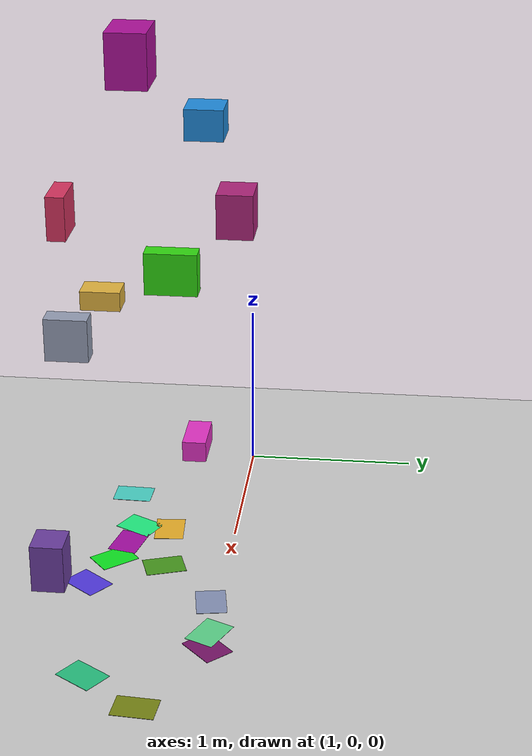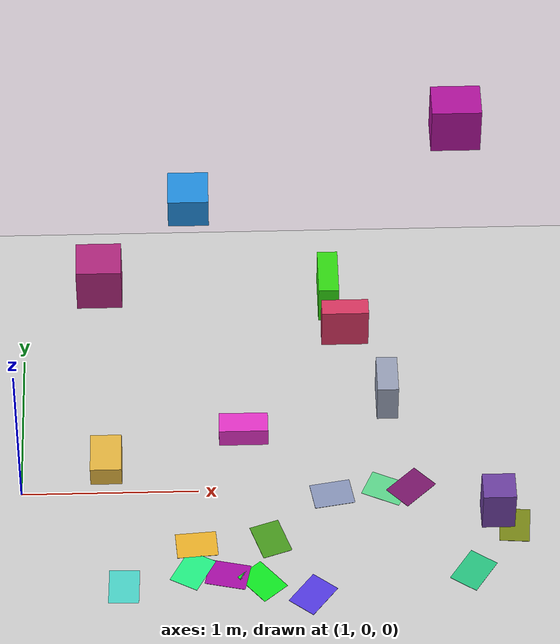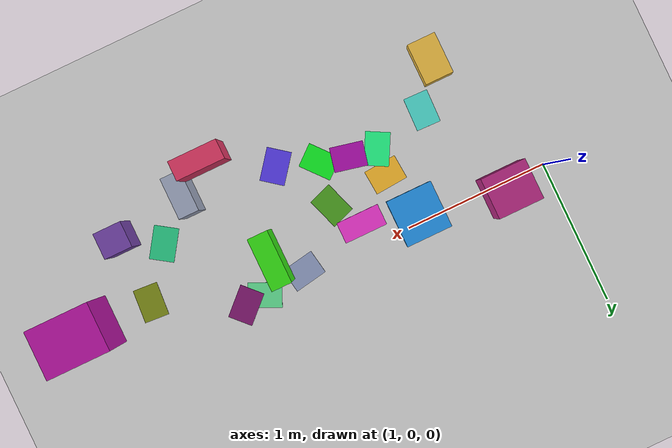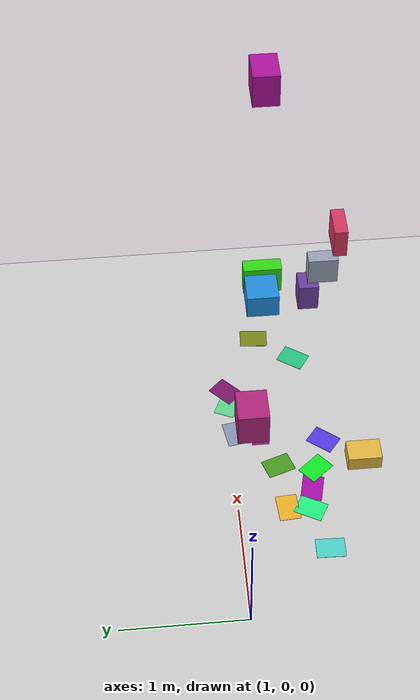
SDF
<sdf version="1.9">
 <world name="default">
  <model name="ground_plane">
   <static>true</static>
   <link name="link">
    <collision name="collision">
     <geometry><plane><normal>0 0 1</normal><size>1 1</size></plane></geometry>
    </collision>
    <visual name="visual">
     <geometry><plane><normal>0 0 1</normal><size>500 500</size></plane></geometry>
     <material>
      <ambient>0.8 0.8 0.8 1</ambient>
      <diffuse>0.8 0.8 0.8 1</diffuse>
      <specular>0.8 0.8 0.8 1</specular>
     </material>
    </visual>
    <inertial>
     <mass>1</mass>
     <inertia><ixx>1</ixx><ixy>0</ixy><ixz>0</ixz><iyy>1</iyy><iyz>0</iyz><izz>1</izz></inertia>
    </inertial>
   </link>
  </model>
  <model name="vio_landmark_7">
   <static>true</static>
   <pose>1.4991176084284137 -0.036578136493710556 1.849456891921559 0 0 0</pose>
   <link name="landmark">
    <visual name="box">
     <geometry><box><size>0.2381024442396868 0.2143327836661557 0.2675315659089866</size></box></geometry>
     <material>
      <ambient>0.6843996681935532 0.14838286085434627 0.4834288956794193 1</ambient>
      <diffuse>0.6843996681935532 0.14838286085434627 0.4834288956794193 1</diffuse>
     </material>
    </visual>
    <collision name="box">
     <geometry><box><size>0.2381024442396868 0.2143327836661557 0.2675315659089866</size></box></geometry>
    </collision>
   </link>
  </model>
  <model name="vio_landmark_8">
   <static>true</static>
   <pose>3.3260343829395365 -0.29334780377611835 3.236322582501966 0 0 0</pose>
   <link name="landmark">
    <visual name="box">
     <geometry><box><size>0.2474844811382655 0.19250243502115666 0.2600565757960368</size></box></geometry>
     <material>
      <ambient>0.6877865405403465 0.06986560409214572 0.6095052033556094 1</ambient>
      <diffuse>0.6877865405403465 0.06986560409214572 0.6095052033556094 1</diffuse>
     </material>
    </visual>
    <collision name="box">
     <geometry><box><size>0.2474844811382655 0.19250243502115666 0.2600565757960368</size></box></geometry>
    </collision>
   </link>
  </model>
  <model name="vio_landmark_35">
   <static>true</static>
   <pose>2.7046704798035965 -0.22761973241446798 1.9463413340297788 0 0 0</pose>
   <link name="landmark">
    <visual name="box">
     <geometry><box><size>0.10570056330650826 0.27633307202623686 0.2262990641246922</size></box></geometry>
     <material>
      <ambient>0.19417177630272295 0.8490896803308957 0.06892612827090151 1</ambient>
      <diffuse>0.19417177630272295 0.8490896803308957 0.06892612827090151 1</diffuse>
     </material>
    </visual>
    <collision name="box">
     <geometry><box><size>0.10570056330650826 0.27633307202623686 0.2262990641246922</size></box></geometry>
    </collision>
   </link>
  </model>
  <model name="vio_landmark_44">
   <static>true</static>
   <pose>1.520163493365612 -0.8392511319998341 1.291840099459094 0 0 0</pose>
   <link name="landmark">
    <visual name="box">
     <geometry><box><size>0.1653187356901011 0.23935538048176136 0.11746240110767536</size></box></geometry>
     <material>
      <ambient>0.8930279164920429 0.707519384040664 0.24784284430091005 1</ambient>
      <diffuse>0.8930279164920429 0.707519384040664 0.24784284430091005 1</diffuse>
     </material>
    </visual>
    <collision name="box">
     <geometry><box><size>0.1653187356901011 0.23935538048176136 0.11746240110767536</size></box></geometry>
    </collision>
   </link>
  </model>
  <model name="vio_landmark_55">
   <static>true</static>
   <pose>3.624351024077228 -0.7228823730711254 0.7447028784496682 0 0 0</pose>
   <link name="landmark">
    <visual name="box">
     <geometry><box><size>0.17861965954695222 0.16578604880620534 0.2516897926466781</size></box></geometry>
     <material>
      <ambient>0.423689305917553 0.2470518066530028 0.6278560985625944 1</ambient>
      <diffuse>0.423689305917553 0.2470518066530028 0.6278560985625944 1</diffuse>
     </material>
    </visual>
    <collision name="box">
     <geometry><box><size>0.17861965954695222 0.16578604880620534 0.2516897926466781</size></box></geometry>
    </collision>
   </link>
  </model>
  <model name="vio_landmark_58">
   <static>true</static>
   <pose>2.9991249731861718 -0.7204616990151003 1.6872349992004234 0 0 0</pose>
   <link name="landmark">
    <visual name="box">
     <geometry><box><size>0.10974089000214822 0.2245976472080729 0.22858494340419294</size></box></geometry>
     <material>
      <ambient>0.5897247333621619 0.6252739645444552 0.7134279163950068 1</ambient>
      <diffuse>0.5897247333621619 0.6252739645444552 0.7134279163950068 1</diffuse>
     </material>
    </visual>
    <collision name="box">
     <geometry><box><size>0.10974089000214822 0.2245976472080729 0.22858494340419294</size></box></geometry>
    </collision>
   </link>
  </model>
  <model name="vio_landmark_76">
   <static>true</static>
   <pose>1.9804367078349483 -0.14074905288185002 2.53129629922569 0 0 0</pose>
   <link name="landmark">
    <visual name="box">
     <geometry><box><size>0.20848595173784612 0.21259900080225053 0.17319705058842913</size></box></geometry>
     <material>
      <ambient>0.12810722232778185 0.552801214304283 0.8710591744085722 1</ambient>
      <diffuse>0.12810722232778185 0.552801214304283 0.8710591744085722 1</diffuse>
     </material>
    </visual>
    <collision name="box">
     <geometry><box><size>0.20848595173784612 0.21259900080225053 0.17319705058842913</size></box></geometry>
    </collision>
   </link>
  </model>
  <model name="vio_landmark_77">
   <static>true</static>
   <pose>2.2553497740420916 -0.17764839679185807 0.7425575645116093 0 0 0</pose>
   <link name="landmark">
    <visual name="box">
     <geometry><box><size>0.2692580619694139 0.13106994863483032 0.11663174467229234</size></box></geometry>
     <material>
      <ambient>0.8944481941752881 0.1987289061100794 0.7775392926856424 1</ambient>
      <diffuse>0.8944481941752881 0.1987289061100794 0.7775392926856424 1</diffuse>
     </material>
    </visual>
    <collision name="box">
     <geometry><box><size>0.2692580619694139 0.13106994863483032 0.11663174467229234</size></box></geometry>
    </collision>
   </link>
  </model>
  <model name="vio_landmark_82">
   <static>true</static>
   <pose>2.7686729633953027 -0.7801530712566986 2.2728474316120204 0 0 0</pose>
   <link name="landmark">
    <visual name="box">
     <geometry><box><size>0.23807456877161448 0.09608576128004699 0.23273494691117613</size></box></geometry>
     <material>
      <ambient>0.841776526053207 0.20499475283429072 0.3759967663760117 1</ambient>
      <diffuse>0.841776526053207 0.20499475283429072 0.3759967663760117 1</diffuse>
     </material>
    </visual>
    <collision name="box">
     <geometry><box><size>0.23807456877161448 0.09608576128004699 0.23273494691117613</size></box></geometry>
    </collision>
   </link>
  </model>
  <model name="vio_floor_patch_2">
   <static>true</static>
   <pose>3.2064005850831183 -0.003380152513067891 .002 0 0 -0.8083960005539854</pose>
   <link name="patch">
    <visual name="patch">
     <geometry><box><size>.17 .23 .002</size></box></geometry>
     <material>
      <ambient>0.47384789516166814 0.08258830249215186 0.41425692825669824 1</ambient>
      <diffuse>0.47384789516166814 0.08258830249215186 0.41425692825669824 1</diffuse>
     </material>
    </visual>
   </link>
  </model>
  <model name="vio_floor_patch_16">
   <static>true</static>
   <pose>2.156702229092849 -0.6092993654285701 .002 0 0 1.3507222149657658</pose>
   <link name="patch">
    <visual name="patch">
     <geometry><box><size>.17 .23 .002</size></box></geometry>
     <material>
      <ambient>0.6547651657069244 0.05137670252811308 0.6517743082917703 1</ambient>
      <diffuse>0.6547651657069244 0.05137670252811308 0.6517743082917703 1</diffuse>
     </material>
    </visual>
   </link>
  </model>
  <model name="vio_floor_patch_25">
   <static>true</static>
   <pose>2.4011454359258613 -0.36111757020932345 .002 0 0 -2.8117466616235425</pose>
   <link name="patch">
    <visual name="patch">
     <geometry><box><size>.17 .23 .002</size></box></geometry>
     <material>
      <ambient>0.2800072507599491 0.6015626300337112 0.11644172738571286 1</ambient>
      <diffuse>0.2800072507599491 0.6015626300337112 0.11644172738571286 1</diffuse>
     </material>
    </visual>
   </link>
  </model>
  <model name="vio_floor_patch_31">
   <static>true</static>
   <pose>3.06290534208546 -0.01097947555563028 .002 0 0 -2.000379051247622</pose>
   <link name="patch">
    <visual name="patch">
     <geometry><box><size>.17 .23 .002</size></box></geometry>
     <material>
      <ambient>0.3617292530391185 0.8371707541029829 0.5460556580891816 1</ambient>
      <diffuse>0.3617292530391185 0.8371707541029829 0.5460556580891816 1</diffuse>
     </material>
    </visual>
   </link>
  </model>
  <model name="vio_floor_patch_74">
   <static>true</static>
   <pose>2.627594614871631 -0.7607751472293245 .002 0 0 -0.6612542882326125</pose>
   <link name="patch">
    <visual name="patch">
     <geometry><box><size>.17 .23 .002</size></box></geometry>
     <material>
      <ambient>0.3260313422215969 0.224156615143033 0.8849193745921856 1</ambient>
      <diffuse>0.3260313422215969 0.224156615143033 0.8849193745921856 1</diffuse>
     </material>
    </visual>
   </link>
  </model>
  <model name="vio_floor_patch_82">
   <static>true</static>
   <pose>1.9619043827246918 -0.5742245087290323 .002 0 0 2.647696301633236</pose>
   <link name="patch">
    <visual name="patch">
     <geometry><box><size>.17 .23 .002</size></box></geometry>
     <material>
      <ambient>0.12808160376560204 0.9433365154097185 0.5111545564382385 1</ambient>
      <diffuse>0.12808160376560204 0.9433365154097185 0.5111545564382385 1</diffuse>
     </material>
    </visual>
   </link>
  </model>
  <model name="vio_floor_patch_87">
   <static>true</static>
   <pose>3.527115344725524 -0.6140540089675488 .002 0 0 2.549251994073924</pose>
   <link name="patch">
    <visual name="patch">
     <geometry><box><size>.17 .23 .002</size></box></geometry>
     <material>
      <ambient>0.1505118386082206 0.7587531935827636 0.5012404938210828 1</ambient>
      <diffuse>0.1505118386082206 0.7587531935827636 0.5012404938210828 1</diffuse>
     </material>
    </visual>
   </link>
  </model>
  <model name="vio_floor_patch_94">
   <static>true</static>
   <pose>2.757632616220021 -0.042545552552587296 .002 0 0 -1.4026393421667076</pose>
   <link name="patch">
    <visual name="patch">
     <geometry><box><size>.17 .23 .002</size></box></geometry>
     <material>
      <ambient>0.53025689901562 0.5801911247155386 0.722240244576088 1</ambient>
      <diffuse>0.53025689901562 0.5801911247155386 0.722240244576088 1</diffuse>
     </material>
    </visual>
   </link>
  </model>
  <model name="vio_floor_patch_97">
   <static>true</static>
   <pose>1.5780502433170345 -0.678881084320639 .002 0 0 -0.027828977018335532</pose>
   <link name="patch">
    <visual name="patch">
     <geometry><box><size>.17 .23 .002</size></box></geometry>
     <material>
      <ambient>0.2902013379561432 0.8247016557288429 0.7789667444473725 1</ambient>
      <diffuse>0.2902013379561432 0.8247016557288429 0.7789667444473725 1</diffuse>
     </material>
    </visual>
   </link>
  </model>
  <model name="vio_floor_patch_133">
   <static>true</static>
   <pose>3.7766928565762603 -0.2950799032287774 .002 0 0 -0.07248215236037492</pose>
   <link name="patch">
    <visual name="patch">
     <geometry><box><size>.17 .23 .002</size></box></geometry>
     <material>
      <ambient>0.4719354428383201 0.5268560333350897 0.08494407854188094 1</ambient>
      <diffuse>0.4719354428383201 0.5268560333350897 0.08494407854188094 1</diffuse>
     </material>
    </visual>
   </link>
  </model>
  <model name="vio_floor_patch_150">
   <static>true</static>
   <pose>1.9846949929625357 -0.39195721331002 .002 0 0 1.6458175135645532</pose>
   <link name="patch">
    <visual name="patch">
     <geometry><box><size>.17 .23 .002</size></box></geometry>
     <material>
      <ambient>0.922855279718373 0.68980733930954 0.16075478133031842 1</ambient>
      <diffuse>0.922855279718373 0.68980733930954 0.16075478133031842 1</diffuse>
     </material>
    </visual>
   </link>
  </model>
  <model name="vio_floor_patch_154">
   <static>true</static>
   <pose>2.347733761795566 -0.6618490402293311 .002 0 0 0.7004419170003051</pose>
   <link name="patch">
    <visual name="patch">
     <geometry><box><size>.17 .23 .002</size></box></geometry>
     <material>
      <ambient>0.055794107456022604 0.9126057041983345 0.13506402399683956 1</ambient>
      <diffuse>0.055794107456022604 0.9126057041983345 0.13506402399683956 1</diffuse>
     </material>
    </visual>
   </link>
  </model>
 </world>
</sdf>
